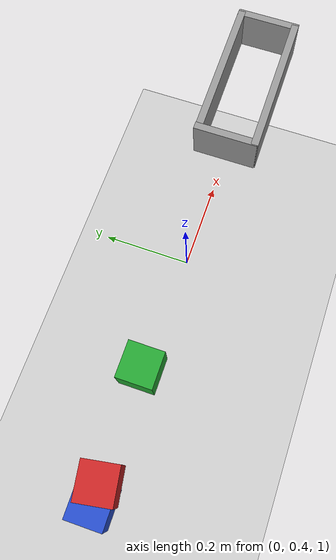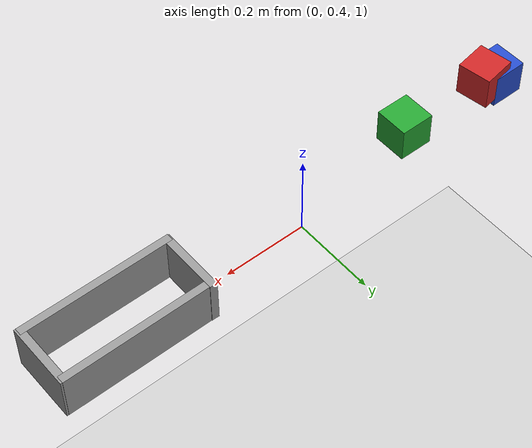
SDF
<sdf version="1.4">
 <world name="default">
  <include><uri>model://ground_plane</uri></include>
  <include><uri>model://sun</uri></include>
  <model name="GreenBox">
   <link name="link">
    <inertial>
     <mass>0.29</mass>
     <inertia>
      <ixx>0.00193333</ixx>
      <ixy>0</ixy>
      <ixz>0</ixz>
      <iyy>0.00193333</iyy>
      <iyz>0</iyz>
      <izz>0.00193333</izz>
     </inertia>
    </inertial>
    <visual name="visual">
     <geometry><box><size>0.08 0.08 0.08</size></box></geometry>
     <material>
      <script><name>Gazebo/Green</name><uri>file://media/materials/scripts/gazebo.material</uri></script>
      <shader type="vertex"><normal_map>__default__</normal_map></shader>
      <ambient>0 0.3 0 1</ambient>
      <diffuse>0.7 0.7 0.7 1</diffuse>
      <specular>0.01 0.01 0.01 1</specular>
      <emissive>0 0 0 1</emissive>
     </material>
    </visual>
    <collision name="collision">
     <geometry><box><size>0.081 0.081 0.081</size></box></geometry>
     <surface>
      <friction>
       <ode><mu>1</mu><mu2>1</mu2><fdir1>0 0 0</fdir1><slip1>0</slip1><slip2>0</slip2></ode>
       <torsional>
        <coefficient>1</coefficient>
        <patch_radius>0</patch_radius>
        <surface_radius>0</surface_radius>
        <use_patch_radius>1</use_patch_radius>
        <ode><slip>0</slip></ode>
       </torsional>
      </friction>
      <bounce><restitution_coefficient>0</restitution_coefficient><threshold>1e+06</threshold></bounce>
      <contact>
       <collide_without_contact>0</collide_without_contact>
       <collide_without_contact_bitmask>1</collide_without_contact_bitmask>
       <collide_bitmask>1</collide_bitmask>
       <ode>
        <soft_cfm>0</soft_cfm>
        <soft_erp>0.2</soft_erp>
        <kp>1e+13</kp>
        <kd>1</kd>
        <max_vel>0.01</max_vel>
        <min_depth>0</min_depth>
       </ode>
       <bullet>
        <split_impulse>1</split_impulse>
        <split_impulse_penetration_threshold>-0.01</split_impulse_penetration_threshold>
        <soft_cfm>0</soft_cfm>
        <soft_erp>0.2</soft_erp>
        <kp>1e+13</kp>
        <kd>1</kd>
       </bullet>
      </contact>
     </surface>
    </collision>
   </link>
   <static>0</static>
   <pose>-0.281412 0.4 1.115 0 -0 0.001827</pose>
  </model>
  <model name="RedBox">
   <link name="link">
    <inertial>
     <mass>0.29</mass>
     <inertia>
      <ixx>0.00193333</ixx>
      <ixy>0</ixy>
      <ixz>0</ixz>
      <iyy>0.00193333</iyy>
      <iyz>0</iyz>
      <izz>0.00193333</izz>
     </inertia>
    </inertial>
    <visual name="visual">
     <geometry><box><size>0.08 0.08 0.08</size></box></geometry>
     <material>
      <script><name>Gazebo/Red</name><uri>file://media/materials/scripts/gazebo.material</uri></script>
      <shader type="vertex"><normal_map>__default__</normal_map></shader>
      <ambient>0.3 0 0 1</ambient>
      <diffuse>0.7 0.7 0.7 1</diffuse>
      <specular>0.01 0.01 0.01 1</specular>
      <emissive>0 0 0 1</emissive>
     </material>
    </visual>
    <collision name="collision">
     <geometry><box><size>0.081 0.081 0.081</size></box></geometry>
     <surface>
      <friction>
       <ode><mu>1</mu><mu2>1</mu2><fdir1>0 0 0</fdir1><slip1>0</slip1><slip2>0</slip2></ode>
       <torsional>
        <coefficient>1</coefficient>
        <patch_radius>0</patch_radius>
        <surface_radius>0</surface_radius>
        <use_patch_radius>1</use_patch_radius>
        <ode><slip>0</slip></ode>
       </torsional>
      </friction>
      <bounce><restitution_coefficient>0</restitution_coefficient><threshold>1e+06</threshold></bounce>
      <contact>
       <collide_without_contact>0</collide_without_contact>
       <collide_without_contact_bitmask>1</collide_without_contact_bitmask>
       <collide_bitmask>1</collide_bitmask>
       <ode>
        <soft_cfm>0</soft_cfm>
        <soft_erp>0.2</soft_erp>
        <kp>1e+13</kp>
        <kd>1</kd>
        <max_vel>0.01</max_vel>
        <min_depth>0</min_depth>
       </ode>
       <bullet>
        <split_impulse>1</split_impulse>
        <split_impulse_penetration_threshold>-0.01</split_impulse_penetration_threshold>
        <soft_cfm>0</soft_cfm>
        <soft_erp>0.2</soft_erp>
        <kp>1e+13</kp>
        <kd>1</kd>
       </bullet>
      </contact>
     </surface>
    </collision>
   </link>
   <static>0</static>
   <pose>-0.516371 0.4 1.115 0 -0 0.168073</pose>
  </model>
  <model name="BlueBox">
   <link name="link">
    <inertial>
     <mass>0.29</mass>
     <inertia>
      <ixx>0.00193333</ixx>
      <ixy>0</ixy>
      <ixz>0</ixz>
      <iyy>0.00193333</iyy>
      <iyz>0</iyz>
      <izz>0.00193333</izz>
     </inertia>
    </inertial>
    <visual name="visual">
     <geometry><box><size>0.08 0.08 0.08</size></box></geometry>
     <material>
      <script><name>Gazebo/Blue</name><uri>file://media/materials/scripts/gazebo.material</uri></script>
      <shader type="vertex"><normal_map>__default__</normal_map></shader>
      <ambient>0 0 0.3 1</ambient>
      <diffuse>0.7 0.7 0.7 1</diffuse>
      <specular>0.01 0.01 0.01 1</specular>
      <emissive>0 0 0 1</emissive>
     </material>
    </visual>
    <collision name="collision">
     <geometry><box><size>0.081 0.081 0.081</size></box></geometry>
     <surface>
      <friction>
       <ode><mu>1</mu><mu2>1</mu2><fdir1>0 0 0</fdir1><slip1>0</slip1><slip2>0</slip2></ode>
       <torsional>
        <coefficient>1</coefficient>
        <patch_radius>0</patch_radius>
        <surface_radius>0</surface_radius>
        <use_patch_radius>1</use_patch_radius>
        <ode><slip>0</slip></ode>
       </torsional>
      </friction>
      <bounce><restitution_coefficient>0</restitution_coefficient><threshold>1e+06</threshold></bounce>
      <contact>
       <collide_without_contact>0</collide_without_contact>
       <collide_without_contact_bitmask>1</collide_without_contact_bitmask>
       <collide_bitmask>1</collide_bitmask>
       <ode>
        <soft_cfm>0</soft_cfm>
        <soft_erp>0.2</soft_erp>
        <kp>1e+13</kp>
        <kd>1</kd>
        <max_vel>0.01</max_vel>
        <min_depth>0</min_depth>
       </ode>
       <bullet>
        <split_impulse>1</split_impulse>
        <split_impulse_penetration_threshold>-0.01</split_impulse_penetration_threshold>
        <soft_cfm>0</soft_cfm>
        <soft_erp>0.2</soft_erp>
        <kp>1e+13</kp>
        <kd>1</kd>
       </bullet>
      </contact>
     </surface>
    </collision>
   </link>
   <static>0</static>
   <pose>-0.556282 0.4 1.095 0 -0 0.009847</pose>
  </model>
  <model name="DepositBox">
   <link name="link_0">
    <inertial>
     <mass>0.00071026</mass>
     <inertia>
      <ixx>7.3e-07</ixx>
      <ixy>0</ixy>
      <ixz>0</ixz>
      <iyy>8.36e-06</iyy>
      <iyz>0</iyz>
      <izz>7.66e-06</izz>
     </inertia>
    </inertial>
    <pose>-0 -0.07 5e-06 0 -0 0</pose>
    <visual name="visual">
     <geometry><box><size>0.359288 0.017976 0.109964</size></box></geometry>
     <material>
      <lighting>1</lighting>
      <script><uri>file://media/materials/scripts/gazebo.material</uri><name>Gazebo/Grey</name></script>
      <emissive>0 0 0 1</emissive>
      <shader type="vertex"><normal_map>__default__</normal_map></shader>
      <ambient>0.3 0.3 0.3 1</ambient>
      <diffuse>0.7 0.7 0.7 1</diffuse>
      <specular>0.1 0.1 0.1 1</specular>
     </material>
    </visual>
    <collision name="collision">
     <geometry><box><size>0.359288 0.017976 0.109964</size></box></geometry>
     <surface>
      <friction>
       <ode><mu>1</mu><mu2>1</mu2><fdir1>0 0 0</fdir1><slip1>0</slip1><slip2>0</slip2></ode>
       <torsional>
        <coefficient>1</coefficient>
        <patch_radius>0</patch_radius>
        <surface_radius>0</surface_radius>
        <use_patch_radius>1</use_patch_radius>
        <ode><slip>0</slip></ode>
       </torsional>
      </friction>
      <bounce><restitution_coefficient>0</restitution_coefficient><threshold>1e+06</threshold></bounce>
      <contact>
       <collide_without_contact>0</collide_without_contact>
       <collide_without_contact_bitmask>1</collide_without_contact_bitmask>
       <collide_bitmask>1</collide_bitmask>
       <ode>
        <soft_cfm>0</soft_cfm>
        <soft_erp>0.2</soft_erp>
        <kp>1e+13</kp>
        <kd>1</kd>
        <max_vel>0.01</max_vel>
        <min_depth>0</min_depth>
       </ode>
       <bullet>
        <split_impulse>1</split_impulse>
        <split_impulse_penetration_threshold>-0.01</split_impulse_penetration_threshold>
        <soft_cfm>0</soft_cfm>
        <soft_erp>0.2</soft_erp>
        <kp>1e+13</kp>
        <kd>1</kd>
       </bullet>
      </contact>
     </surface>
    </collision>
   </link>
   <link name="link_0_clone">
    <inertial>
     <mass>0.00071026</mass>
     <inertia>
      <ixx>7.3e-07</ixx>
      <ixy>0</ixy>
      <ixz>0</ixz>
      <iyy>8.36e-06</iyy>
      <iyz>0</iyz>
      <izz>7.66e-06</izz>
     </inertia>
    </inertial>
    <pose>0 0.07 0 0 -0 0</pose>
    <visual name="visual">
     <geometry><box><size>0.359288 0.017976 0.109964</size></box></geometry>
     <material>
      <lighting>1</lighting>
      <script><uri>file://media/materials/scripts/gazebo.material</uri><name>Gazebo/Grey</name></script>
      <shader type="pixel"><normal_map>__default__</normal_map></shader>
      <emissive>0 0 0 1</emissive>
      <ambient>0.3 0.3 0.3 1</ambient>
      <diffuse>0.7 0.7 0.7 1</diffuse>
      <specular>0.01 0.01 0.01 1</specular>
     </material>
    </visual>
    <collision name="collision">
     <geometry><box><size>0.359288 0.017976 0.109964</size></box></geometry>
     <surface>
      <friction>
       <ode><mu>1</mu><mu2>1</mu2><fdir1>0 0 0</fdir1><slip1>0</slip1><slip2>0</slip2></ode>
       <torsional>
        <coefficient>1</coefficient>
        <patch_radius>0</patch_radius>
        <surface_radius>0</surface_radius>
        <use_patch_radius>1</use_patch_radius>
        <ode><slip>0</slip></ode>
       </torsional>
      </friction>
      <bounce><restitution_coefficient>0</restitution_coefficient><threshold>1e+06</threshold></bounce>
      <contact>
       <collide_without_contact>0</collide_without_contact>
       <collide_without_contact_bitmask>1</collide_without_contact_bitmask>
       <collide_bitmask>1</collide_bitmask>
       <ode>
        <soft_cfm>0</soft_cfm>
        <soft_erp>0.2</soft_erp>
        <kp>1e+13</kp>
        <kd>1</kd>
        <max_vel>0.01</max_vel>
        <min_depth>0</min_depth>
       </ode>
       <bullet>
        <split_impulse>1</split_impulse>
        <split_impulse_penetration_threshold>-0.01</split_impulse_penetration_threshold>
        <soft_cfm>0</soft_cfm>
        <soft_erp>0.2</soft_erp>
        <kp>1e+13</kp>
        <kd>1</kd>
       </bullet>
      </contact>
     </surface>
    </collision>
   </link>
   <link name="link_0_clone_0">
    <inertial>
     <mass>0.00033889</mass>
     <inertia><ixx>3.5e-07</ixx><ixy>0</ixy><ixz>0</ixz><iyy>1.17e-06</iyy><iyz>0</iyz><izz>8.4e-07</izz></inertia>
    </inertial>
    <pose>-0.172905 0.001548 4e-06 0 -0 -1.57234</pose>
    <visual name="visual">
     <geometry><box><size>0.157 0.017976 0.109964</size></box></geometry>
     <material>
      <lighting>1</lighting>
      <script><uri>file://media/materials/scripts/gazebo.material</uri><name>Gazebo/Grey</name></script>
      <shader type="vertex"><normal_map>__default__</normal_map></shader>
      <emissive>0 0 0 1</emissive>
      <ambient>0.3 0.3 0.3 1</ambient>
      <diffuse>0.7 0.7 0.7 1</diffuse>
      <specular>0.01 0.01 0.01 1</specular>
     </material>
    </visual>
    <collision name="collision">
     <geometry><box><size>0.171428 0.017976 0.109964</size></box></geometry>
     <surface>
      <friction>
       <ode><mu>1</mu><mu2>1</mu2><fdir1>0 0 0</fdir1><slip1>0</slip1><slip2>0</slip2></ode>
       <torsional>
        <coefficient>1</coefficient>
        <patch_radius>0</patch_radius>
        <surface_radius>0</surface_radius>
        <use_patch_radius>1</use_patch_radius>
        <ode><slip>0</slip></ode>
       </torsional>
      </friction>
      <bounce><restitution_coefficient>0</restitution_coefficient><threshold>1e+06</threshold></bounce>
      <contact>
       <collide_without_contact>0</collide_without_contact>
       <collide_without_contact_bitmask>1</collide_without_contact_bitmask>
       <collide_bitmask>1</collide_bitmask>
       <ode>
        <soft_cfm>0</soft_cfm>
        <soft_erp>0.2</soft_erp>
        <kp>1e+13</kp>
        <kd>1</kd>
        <max_vel>0.01</max_vel>
        <min_depth>0</min_depth>
       </ode>
       <bullet>
        <split_impulse>1</split_impulse>
        <split_impulse_penetration_threshold>-0.01</split_impulse_penetration_threshold>
        <soft_cfm>0</soft_cfm>
        <soft_erp>0.2</soft_erp>
        <kp>1e+13</kp>
        <kd>1</kd>
       </bullet>
      </contact>
     </surface>
    </collision>
   </link>
   <link name="link_0_clone_0_clone">
    <inertial>
     <mass>0.00033759</mass>
     <inertia><ixx>3.5e-07</ixx><ixy>0</ixy><ixz>0</ixz><iyy>1.16e-06</iyy><iyz>0</iyz><izz>8.3e-07</izz></inertia>
    </inertial>
    <pose>0.175 0 -0 0 -0 -1.57234</pose>
    <visual name="visual">
     <geometry><box><size>0.157 0.017976 0.109964</size></box></geometry>
     <material>
      <lighting>1</lighting>
      <script><uri>file://media/materials/scripts/gazebo.material</uri><name>Gazebo/Grey</name></script>
      <shader type="pixel"><normal_map>__default__</normal_map></shader>
      <emissive>0 0 0 1</emissive>
      <ambient>0.3 0.3 0.3 1</ambient>
      <diffuse>0.7 0.7 0.7 1</diffuse>
      <specular>0.01 0.01 0.01 1</specular>
     </material>
    </visual>
    <collision name="collision">
     <geometry><box><size>0.170763 0.017976 0.109964</size></box></geometry>
     <surface>
      <friction>
       <ode><mu>1</mu><mu2>1</mu2><fdir1>0 0 0</fdir1><slip1>0</slip1><slip2>0</slip2></ode>
       <torsional>
        <coefficient>1</coefficient>
        <patch_radius>0</patch_radius>
        <surface_radius>0</surface_radius>
        <use_patch_radius>1</use_patch_radius>
        <ode><slip>0</slip></ode>
       </torsional>
      </friction>
      <bounce><restitution_coefficient>0</restitution_coefficient><threshold>1e+06</threshold></bounce>
      <contact>
       <collide_without_contact>0</collide_without_contact>
       <collide_without_contact_bitmask>1</collide_without_contact_bitmask>
       <collide_bitmask>1</collide_bitmask>
       <ode>
        <soft_cfm>0</soft_cfm>
        <soft_erp>0.2</soft_erp>
        <kp>1e+13</kp>
        <kd>1</kd>
        <max_vel>0.01</max_vel>
        <min_depth>0</min_depth>
       </ode>
       <bullet>
        <split_impulse>1</split_impulse>
        <split_impulse_penetration_threshold>-0.01</split_impulse_penetration_threshold>
        <soft_cfm>0</soft_cfm>
        <soft_erp>0.2</soft_erp>
        <kp>1e+13</kp>
        <kd>1</kd>
       </bullet>
      </contact>
     </surface>
    </collision>
   </link>
   <joint name="link_0_clone_0_clone_JOINT_0" type="fixed">
    <parent>link_0_clone_0_clone</parent>
    <child>link_0</child>
    <physics>
     <ode><limit><cfm>0</cfm><erp>0.2</erp></limit><suspension><cfm>0</cfm><erp>0.2</erp></suspension></ode>
    </physics>
   </joint>
   <joint name="link_0_clone_0_clone_JOINT_1" type="fixed">
    <parent>link_0_clone_0_clone</parent>
    <child>link_0_clone</child>
    <physics>
     <ode><limit><cfm>0</cfm><erp>0.2</erp></limit><suspension><cfm>0</cfm><erp>0.2</erp></suspension></ode>
    </physics>
   </joint>
   <joint name="link_0_clone_0_clone_JOINT_2" type="fixed">
    <parent>link_0_clone_0_clone</parent>
    <child>link_0_clone_0</child>
    <physics>
     <ode><limit><cfm>0</cfm><erp>0.2</erp></limit><suspension><cfm>0</cfm><erp>0.2</erp></suspension></ode>
    </physics>
   </joint>
   <static>0</static>
   <pose>0.464366 0.4 1.06998 3e-06 -2e-06 0.003079</pose>
  </model>
  <physics type="ode" update_rate="100.0">
   <max_step_size>0.001</max_step_size>
   <real_time_factor>1</real_time_factor>
   <real_time_update_rate>1000</real_time_update_rate>
   <gravity>0 0 -9.81</gravity>
  </physics>
 </world>
</sdf>
